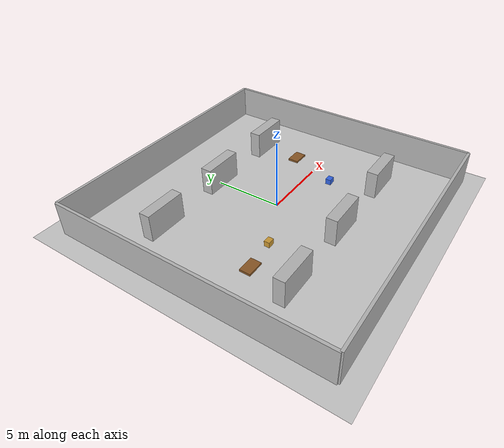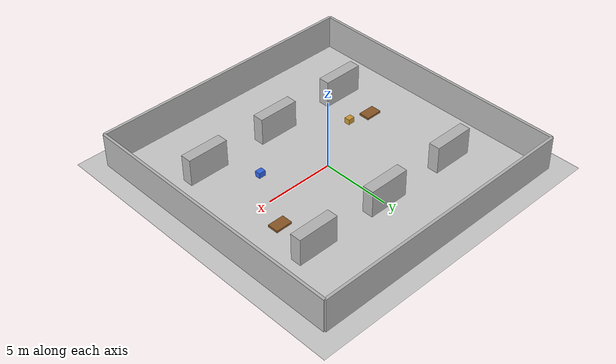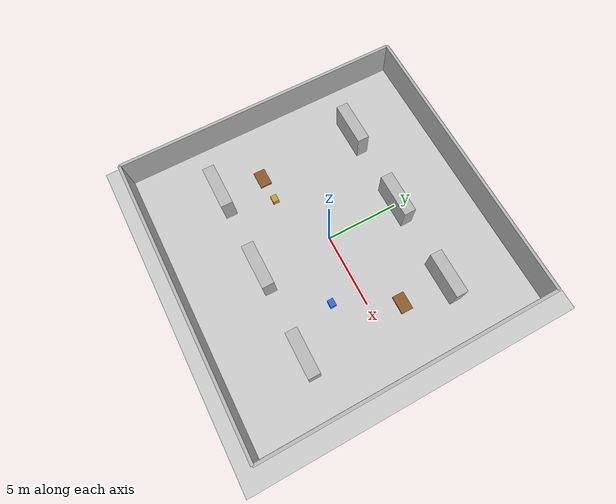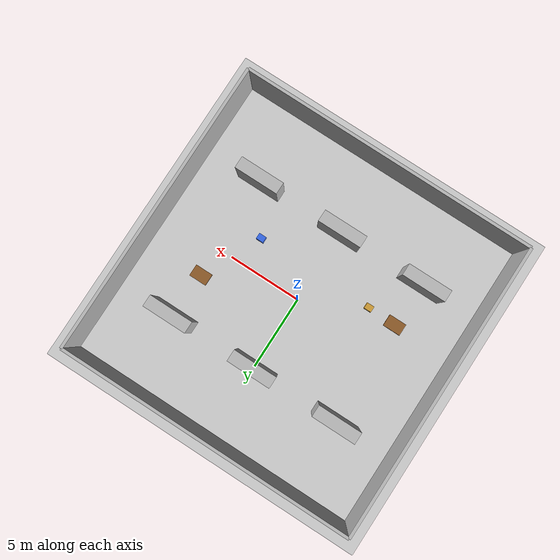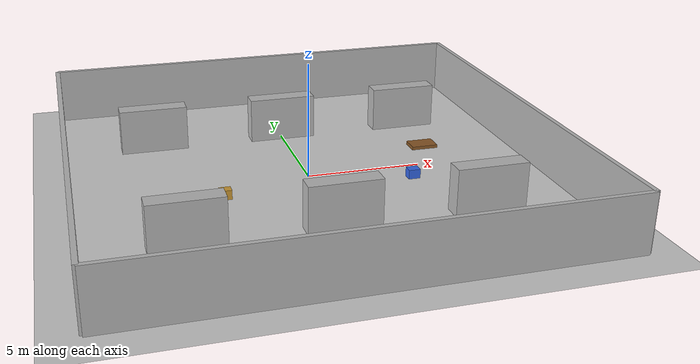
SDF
<?xml version="1.0"?>
<sdf version="1.7">
  <world name="warehouse_lite">

    <physics type="ode">
      <max_step_size>0.002</max_step_size>
      <real_time_update_rate>250</real_time_update_rate>
    </physics>

    <include>
      <uri>model://sun</uri>
    </include>

    <include>
      <uri>model://ground_plane</uri>
    </include>

    <!-- Left Wall -->
    <model name="wall_left">
      <static>true</static>

      <link name="link">

        <collision name="collision">
          <geometry>
            <box>
              <size>20 0.2 2.5</size>
            </box>
          </geometry>
        </collision>

        <visual name="visual">
          <geometry>
            <box>
              <size>20 0.2 2.5</size>
            </box>
          </geometry>
        </visual>

        <pose>
          0 -10 1.25 0 0 0
        </pose>

      </link>

    </model>

    <!-- Right Wall -->
    <model name="wall_right">
      <static>true</static>

      <link name="link">

        <collision name="collision">
          <geometry>
            <box>
              <size>20 0.2 2.5</size>
            </box>
          </geometry>
        </collision>

        <visual name="visual">
          <geometry>
            <box>
              <size>20 0.2 2.5</size>
            </box>
          </geometry>
        </visual>

        <pose>
          0 10 1.25 0 0 0
        </pose>

      </link>

    </model>

    <!-- Front Wall -->
    <model name="wall_front">
      <static>true</static>

      <link name="link">

        <collision name="collision">
          <geometry>
            <box>
              <size>0.2 20 2.5</size>
            </box>
          </geometry>
        </collision>

        <visual name="visual">
          <geometry>
            <box>
              <size>0.2 20 2.5</size>
            </box>
          </geometry>
        </visual>

        <pose>
          10 0 1.25 0 0 0
        </pose>

      </link>

    </model>

    <!-- Back Wall -->
    <model name="wall_back">
      <static>true</static>

      <link name="link">

        <collision name="collision">
          <geometry>
            <box>
              <size>0.2 20 2.5</size>
            </box>
          </geometry>
        </collision>

        <visual name="visual">
          <geometry>
            <box>
              <size>0.2 20 2.5</size>
            </box>
          </geometry>
        </visual>

        <pose>
          -10 0 1.25 0 0 0
        </pose>

      </link>

    </model>

    <gui fullscreen="0">
      <camera name="user_camera">
        <pose>10 -10 8 0 0.5 2.3</pose>
      </camera>
    </gui>

    <!-- Shelf 1  (-6, -5) -->
    <model name="shelf_1">
      <static>true</static>
      <pose>-6 -5 1 0 0 0</pose>
      <link name="link">
        <collision name="collision">
          <geometry>
            <box><size>3 0.8 2</size></box>
          </geometry>
        </collision>
        <visual name="visual">
          <geometry>
            <box><size>3 0.8 2</size></box>
          </geometry>
        </visual>
      </link>
    </model>

    <!-- Shelf 2  (0, -5) -->
    <model name="shelf_2">
      <static>true</static>
      <pose>0 -5 1 0 0 0</pose>
      <link name="link">
        <collision name="collision">
          <geometry>
            <box><size>3 0.8 2</size></box>
          </geometry>
        </collision>
        <visual name="visual">
          <geometry>
            <box><size>3 0.8 2</size></box>
          </geometry>
        </visual>
      </link>
    </model>

    <!-- Shelf 3  (6, -5) -->
    <model name="shelf_3">
      <static>true</static>
      <pose>6 -5 1 0 0 0</pose>
      <link name="link">
        <collision name="collision">
          <geometry>
            <box><size>3 0.8 2</size></box>
          </geometry>
        </collision>
        <visual name="visual">
          <geometry>
            <box><size>3 0.8 2</size></box>
          </geometry>
        </visual>
      </link>
    </model>

    <!-- Shelf 4  (-6, 5) -->
    <model name="shelf_4">
      <static>true</static>
      <pose>-6 5 1 0 0 0</pose>
      <link name="link">
        <collision name="collision">
          <geometry>
            <box><size>3 0.8 2</size></box>
          </geometry>
        </collision>
        <visual name="visual">
          <geometry>
            <box><size>3 0.8 2</size></box>
          </geometry>
        </visual>
      </link>
    </model>

    <!-- Shelf 5  (0, 5) -->
    <model name="shelf_5">
      <static>true</static>
      <pose>0 5 1 0 0 0</pose>
      <link name="link">
        <collision name="collision">
          <geometry>
            <box><size>3 0.8 2</size></box>
          </geometry>
        </collision>
        <visual name="visual">
          <geometry>
            <box><size>3 0.8 2</size></box>
          </geometry>
        </visual>
      </link>
    </model>

    <!-- Shelf 6  (6, 5) -->
    <model name="shelf_6">
      <static>true</static>
      <pose>6 5 1 0 0 0</pose>
      <link name="link">
        <collision name="collision">
          <geometry>
            <box><size>3 0.8 2</size></box>
          </geometry>
        </collision>
        <visual name="visual">
          <geometry>
            <box><size>3 0.8 2</size></box>
          </geometry>
        </visual>
      </link>
    </model>

    <!-- Pallet -->

    <model name="pallet_1">
      <static>true</static>
      <pose>-6 -2 0.075 0 0 0</pose>
      <link name="link">
        <collision name="collision">
          <geometry>
            <box>
              <size>1.2 0.8 0.15</size>
            </box>
          </geometry>
        </collision>
        <visual name="visual">
          <geometry>
            <box>
              <size>1.2 0.8 0.15</size>
            </box>
          </geometry>
          <material>
            <ambient>0.55 0.35 0.15 1</ambient>
            <diffuse>0.55 0.35 0.15 1</diffuse>
          </material>
        </visual>
      </link>
    </model>

    <model name="pallet_2">
      <static>true</static>
      <pose>6 2 0.075 0 0 0</pose>
      <link name="link">
        <collision name="collision">
          <geometry>
            <box>
              <size>1.2 0.8 0.15</size>
            </box>
          </geometry>
        </collision>
        <visual name="visual">
          <geometry>
            <box>
              <size>1.2 0.8 0.15</size>
            </box>
          </geometry>
          <material>
            <ambient>0.55 0.35 0.15 1</ambient>
            <diffuse>0.55 0.35 0.15 1</diffuse>
          </material>
        </visual>
      </link>
    </model>

    <!-- Cargo Boxes -->

    <model name="box_1">
      <pose>-4 -2 0.55 0 0 0</pose>
      <static>true</static>
      <link name="link">
        <collision name="collision">
          <geometry>
            <box>
              <size>0.5 0.4 0.4</size>
            </box>
          </geometry>
        </collision>
        <visual name="visual">
          <geometry>
            <box>
              <size>0.5 0.4 0.4</size>
            </box>
          </geometry>
          <material>
            <ambient>0.8 0.6 0.2 1</ambient>
            <diffuse>0.8 0.6 0.2 1</diffuse>
          </material>
        </visual>
      </link>
    </model>

    <model name="box_2">
      <pose>4 -2 0.55 0 0 0</pose>
      <static>true</static>
      <link name="link">
        <collision name="collision">
          <geometry>
            <box>
              <size>0.5 0.4 0.4</size>
            </box>
          </geometry>
        </collision>
        <visual name="visual">
          <geometry>
            <box>
              <size>0.5 0.4 0.4</size>
            </box>
          </geometry>
          <material>
            <ambient>0.2 0.4 0.9 1</ambient>
            <diffuse>0.2 0.4 0.9 1</diffuse>
          </material>
        </visual>
      </link>
    </model>

  </world>
</sdf>
